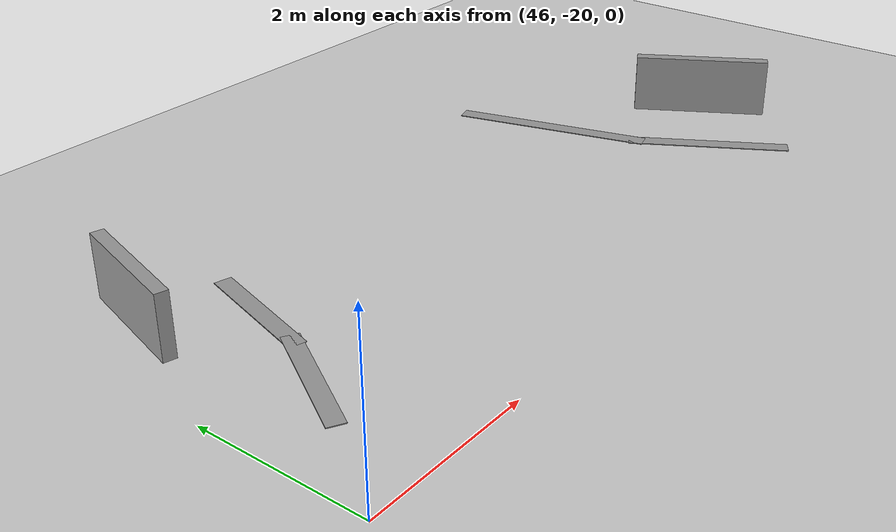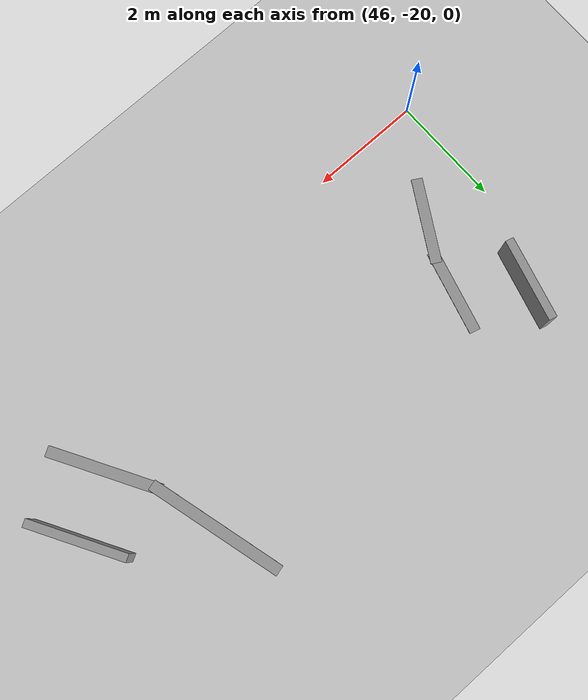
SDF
<sdf version="1.6">
 <world name="default">
  <model name="ground_plane">
   <static>1</static>
   <link name="link">
    <collision name="collision">
     <geometry><plane><normal>0 0 1</normal><size>100 100</size></plane></geometry>
     <surface>
      <contact><collide_bitmask>65535</collide_bitmask></contact>
      <friction><ode><mu>100</mu><mu2>50</mu2></ode></friction>
     </surface>
    </collision>
    <visual name="visual">
     <cast_shadows>0</cast_shadows>
     <geometry><plane><normal>0 0 1</normal><size>100 100</size></plane></geometry>
     <material>
      <script><uri>file://media/materials/scripts/gazebo.material</uri><name>Gazebo/Grey</name></script>
     </material>
    </visual>
   </link>
  </model>
  <model name="GercekDuvarSeritKoyu1">
   <link name="Wall_318">
    <pose>-36.0309 -5.83109 0 0 0 -2.61795</pose>
    <visual name="Wall_318_Visual">
     <pose>0 0 0.005 0 -0 0</pose>
     <geometry><box><size>2.05023 0.2 0.01</size></box></geometry>
     <material>
      <script><uri>file://media/materials/scripts/gazebo.material</uri><name>Gazebo/Grey</name></script>
      <ambient>1 1 1 1</ambient>
      <shader type="pixel"/>
     </material>
     <meta><layer>0</layer></meta>
    </visual>
    <collision name="Wall_318_Collision">
     <pose>0 0 0.005 0 -0 0</pose>
     <geometry><box><size>2.05023 0.2 0.01</size></box></geometry>
     <surface>
      <friction>
       <ode><mu>1</mu><mu2>1</mu2><fdir1>0 0 0</fdir1><slip1>0</slip1><slip2>0</slip2></ode>
       <torsional>
        <coefficient>1</coefficient>
        <patch_radius>0</patch_radius>
        <surface_radius>0</surface_radius>
        <use_patch_radius>1</use_patch_radius>
        <ode><slip>0</slip></ode>
       </torsional>
      </friction>
      <bounce><restitution_coefficient>0</restitution_coefficient><threshold>1e+06</threshold></bounce>
      <contact>
       <collide_without_contact>0</collide_without_contact>
       <collide_without_contact_bitmask>1</collide_without_contact_bitmask>
       <collide_bitmask>1</collide_bitmask>
       <ode>
        <soft_cfm>0</soft_cfm>
        <soft_erp>0.2</soft_erp>
        <kp>1e+13</kp>
        <kd>1</kd>
        <max_vel>0.01</max_vel>
        <min_depth>0</min_depth>
       </ode>
       <bullet>
        <split_impulse>1</split_impulse>
        <split_impulse_penetration_threshold>-0.01</split_impulse_penetration_threshold>
        <soft_cfm>0</soft_cfm>
        <soft_erp>0.2</soft_erp>
        <kp>1e+13</kp>
        <kd>1</kd>
       </bullet>
      </contact>
     </surface>
    </collision>
   </link>
   <link name="Wall_319">
    <pose>-37.9669 -6.59809 0 0 0 -2.87948</pose>
    <visual name="Wall_319_Visual">
     <pose>0 0 0.005 0 -0 0</pose>
     <geometry><box><size>2.5503 0.2 0.01</size></box></geometry>
     <material>
      <script><uri>file://media/materials/scripts/gazebo.material</uri><name>Gazebo/Grey</name></script>
      <ambient>1 1 1 1</ambient>
      <shader type="pixel"/>
     </material>
     <meta><layer>0</layer></meta>
    </visual>
    <collision name="Wall_319_Collision">
     <pose>0 0 0.005 0 -0 0</pose>
     <geometry><box><size>2.5503 0.2 0.01</size></box></geometry>
     <surface>
      <friction>
       <ode><mu>1</mu><mu2>1</mu2><fdir1>0 0 0</fdir1><slip1>0</slip1><slip2>0</slip2></ode>
       <torsional>
        <coefficient>1</coefficient>
        <patch_radius>0</patch_radius>
        <surface_radius>0</surface_radius>
        <use_patch_radius>1</use_patch_radius>
        <ode><slip>0</slip></ode>
       </torsional>
      </friction>
      <bounce><restitution_coefficient>0</restitution_coefficient><threshold>1e+06</threshold></bounce>
      <contact>
       <collide_without_contact>0</collide_without_contact>
       <collide_without_contact_bitmask>1</collide_without_contact_bitmask>
       <collide_bitmask>1</collide_bitmask>
       <ode>
        <soft_cfm>0</soft_cfm>
        <soft_erp>0.2</soft_erp>
        <kp>1e+13</kp>
        <kd>1</kd>
        <max_vel>0.01</max_vel>
        <min_depth>0</min_depth>
       </ode>
       <bullet>
        <split_impulse>1</split_impulse>
        <split_impulse_penetration_threshold>-0.01</split_impulse_penetration_threshold>
        <soft_cfm>0</soft_cfm>
        <soft_erp>0.2</soft_erp>
        <kp>1e+13</kp>
        <kd>1</kd>
       </bullet>
      </contact>
     </surface>
    </collision>
   </link>
   <link name="Wall_355">
    <pose>-36.4274 -12.7701 0 0 -0 2.61794</pose>
    <visual name="Wall_355_Visual">
     <pose>0 0 0.005 0 -0 0</pose>
     <geometry><box><size>1.54993 0.2 0.01</size></box></geometry>
     <material>
      <script><uri>file://media/materials/scripts/gazebo.material</uri><name>Gazebo/Grey</name></script>
      <ambient>1 1 1 1</ambient>
      <shader type="pixel"/>
     </material>
     <meta><layer>0</layer></meta>
    </visual>
    <collision name="Wall_355_Collision">
     <pose>0 0 0.005 0 -0 0</pose>
     <geometry><box><size>1.54993 0.2 0.01</size></box></geometry>
     <surface>
      <friction>
       <ode><mu>1</mu><mu2>1</mu2><fdir1>0 0 0</fdir1><slip1>0</slip1><slip2>0</slip2></ode>
       <torsional>
        <coefficient>1</coefficient>
        <patch_radius>0</patch_radius>
        <surface_radius>0</surface_radius>
        <use_patch_radius>1</use_patch_radius>
        <ode><slip>0</slip></ode>
       </torsional>
      </friction>
      <bounce><restitution_coefficient>0</restitution_coefficient><threshold>1e+06</threshold></bounce>
      <contact>
       <collide_without_contact>0</collide_without_contact>
       <collide_without_contact_bitmask>1</collide_without_contact_bitmask>
       <collide_bitmask>1</collide_bitmask>
       <ode>
        <soft_cfm>0</soft_cfm>
        <soft_erp>0.2</soft_erp>
        <kp>1e+13</kp>
        <kd>1</kd>
        <max_vel>0.01</max_vel>
        <min_depth>0</min_depth>
       </ode>
       <bullet>
        <split_impulse>1</split_impulse>
        <split_impulse_penetration_threshold>-0.01</split_impulse_penetration_threshold>
        <soft_cfm>0</soft_cfm>
        <soft_erp>0.2</soft_erp>
        <kp>1e+13</kp>
        <kd>1</kd>
       </bullet>
      </contact>
     </surface>
    </collision>
   </link>
   <link name="Wall_356">
    <pose>-37.6639 -12.2581 0 0 -0 2.88008</pose>
    <visual name="Wall_356_Visual">
     <pose>0 0 0.005 0 -0 0</pose>
     <geometry><box><size>1.55004 0.2 0.01</size></box></geometry>
     <material>
      <script><uri>file://media/materials/scripts/gazebo.material</uri><name>Gazebo/Grey</name></script>
      <ambient>1 1 1 1</ambient>
      <shader type="pixel"/>
     </material>
     <meta><layer>0</layer></meta>
    </visual>
    <collision name="Wall_356_Collision">
     <pose>0 0 0.005 0 -0 0</pose>
     <geometry><box><size>1.55004 0.2 0.01</size></box></geometry>
     <surface>
      <friction>
       <ode><mu>1</mu><mu2>1</mu2><fdir1>0 0 0</fdir1><slip1>0</slip1><slip2>0</slip2></ode>
       <torsional>
        <coefficient>1</coefficient>
        <patch_radius>0</patch_radius>
        <surface_radius>0</surface_radius>
        <use_patch_radius>1</use_patch_radius>
        <ode><slip>0</slip></ode>
       </torsional>
      </friction>
      <bounce><restitution_coefficient>0</restitution_coefficient><threshold>1e+06</threshold></bounce>
      <contact>
       <collide_without_contact>0</collide_without_contact>
       <collide_without_contact_bitmask>1</collide_without_contact_bitmask>
       <collide_bitmask>1</collide_bitmask>
       <ode>
        <soft_cfm>0</soft_cfm>
        <soft_erp>0.2</soft_erp>
        <kp>1e+13</kp>
        <kd>1</kd>
        <max_vel>0.01</max_vel>
        <min_depth>0</min_depth>
       </ode>
       <bullet>
        <split_impulse>1</split_impulse>
        <split_impulse_penetration_threshold>-0.01</split_impulse_penetration_threshold>
        <soft_cfm>0</soft_cfm>
        <soft_erp>0.2</soft_erp>
        <kp>1e+13</kp>
        <kd>1</kd>
       </bullet>
      </contact>
     </surface>
    </collision>
   </link>
   <link name="Wall_56">
    <pose>-36.6974 -4.85459 0 0 0 -2.61779</pose>
    <inertial>
     <mass>1</mass>
     <inertia><ixx>1</ixx><ixy>0</ixy><ixz>0</ixz><iyy>1</iyy><iyz>0</iyz><izz>1</izz></inertia>
    </inertial>
    <visual name="Wall_56_Visual">
     <pose>0 0 0.375 0 -0 0</pose>
     <geometry><box><size>1.75 0.15 0.75</size></box></geometry>
     <material>
      <script><uri>file://media/materials/scripts/gazebo.material</uri><name>Gazebo/Grey</name></script>
      <ambient>0.5 0.5 0.5 1</ambient>
      <shader type="pixel"><normal_map>__default__</normal_map></shader>
      <diffuse>0.7 0.7 0.7 1</diffuse>
      <specular>0.01 0.01 0.01 1</specular>
      <emissive>0 0 0 1</emissive>
     </material>
     <meta><layer>0</layer></meta>
    </visual>
    <collision name="Wall_56_Collision">
     <pose>0 0 0.375 0 -0 0</pose>
     <geometry><box><size>1.75 0.15 0.75</size></box></geometry>
     <surface>
      <friction>
       <ode><mu>1</mu><mu2>1</mu2><fdir1>0 0 0</fdir1><slip1>0</slip1><slip2>0</slip2></ode>
       <torsional>
        <coefficient>1</coefficient>
        <patch_radius>0</patch_radius>
        <surface_radius>0</surface_radius>
        <use_patch_radius>1</use_patch_radius>
        <ode><slip>0</slip></ode>
       </torsional>
      </friction>
      <bounce><restitution_coefficient>0</restitution_coefficient><threshold>1e+06</threshold></bounce>
      <contact>
       <collide_without_contact>0</collide_without_contact>
       <collide_without_contact_bitmask>1</collide_without_contact_bitmask>
       <collide_bitmask>1</collide_bitmask>
       <ode>
        <soft_cfm>0</soft_cfm>
        <soft_erp>0.2</soft_erp>
        <kp>1e+13</kp>
        <kd>1</kd>
        <max_vel>0.01</max_vel>
        <min_depth>0</min_depth>
       </ode>
       <bullet>
        <split_impulse>1</split_impulse>
        <split_impulse_penetration_threshold>-0.01</split_impulse_penetration_threshold>
        <soft_cfm>0</soft_cfm>
        <soft_erp>0.2</soft_erp>
        <kp>1e+13</kp>
        <kd>1</kd>
       </bullet>
      </contact>
     </surface>
    </collision>
   </link>
   <link name="Wall_70">
    <pose>-38.4119 -13.1721 0 0 0 -0.261509</pose>
    <inertial>
     <mass>1</mass>
     <inertia><ixx>1</ixx><ixy>0</ixy><ixz>0</ixz><iyy>1</iyy><iyz>0</iyz><izz>1</izz></inertia>
    </inertial>
    <visual name="Wall_70_Visual">
     <pose>0 0 0.375 0 -0 0</pose>
     <geometry><box><size>1.5 0.15 0.75</size></box></geometry>
     <material>
      <script><uri>file://media/materials/scripts/gazebo.material</uri><name>Gazebo/Grey</name></script>
      <ambient>0.5 0.5 0.5 1</ambient>
      <shader type="pixel"><normal_map>__default__</normal_map></shader>
      <diffuse>0.7 0.7 0.7 1</diffuse>
      <specular>0.01 0.01 0.01 1</specular>
      <emissive>0 0 0 1</emissive>
     </material>
     <meta><layer>0</layer></meta>
    </visual>
    <collision name="Wall_70_Collision">
     <pose>0 0 0.375 0 -0 0</pose>
     <geometry><box><size>1.5 0.15 0.75</size></box></geometry>
     <surface>
      <friction>
       <ode><mu>1</mu><mu2>1</mu2><fdir1>0 0 0</fdir1><slip1>0</slip1><slip2>0</slip2></ode>
       <torsional>
        <coefficient>1</coefficient>
        <patch_radius>0</patch_radius>
        <surface_radius>0</surface_radius>
        <use_patch_radius>1</use_patch_radius>
        <ode><slip>0</slip></ode>
       </torsional>
      </friction>
      <bounce><restitution_coefficient>0</restitution_coefficient><threshold>1e+06</threshold></bounce>
      <contact>
       <collide_without_contact>0</collide_without_contact>
       <collide_without_contact_bitmask>1</collide_without_contact_bitmask>
       <collide_bitmask>1</collide_bitmask>
       <ode>
        <soft_cfm>0</soft_cfm>
        <soft_erp>0.2</soft_erp>
        <kp>1e+13</kp>
        <kd>1</kd>
        <max_vel>0.01</max_vel>
        <min_depth>0</min_depth>
       </ode>
       <bullet>
        <split_impulse>1</split_impulse>
        <split_impulse_penetration_threshold>-0.01</split_impulse_penetration_threshold>
        <soft_cfm>0</soft_cfm>
        <soft_erp>0.2</soft_erp>
        <kp>1e+13</kp>
        <kd>1</kd>
       </bullet>
      </contact>
     </surface>
    </collision>
   </link>
   <static>1</static>
   <pose>59.9324 -54.7034 -0 0 0 -1.5695</pose>
  </model>
 </world>
</sdf>
